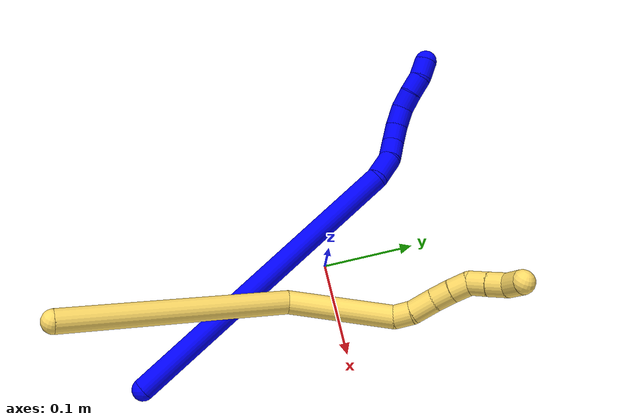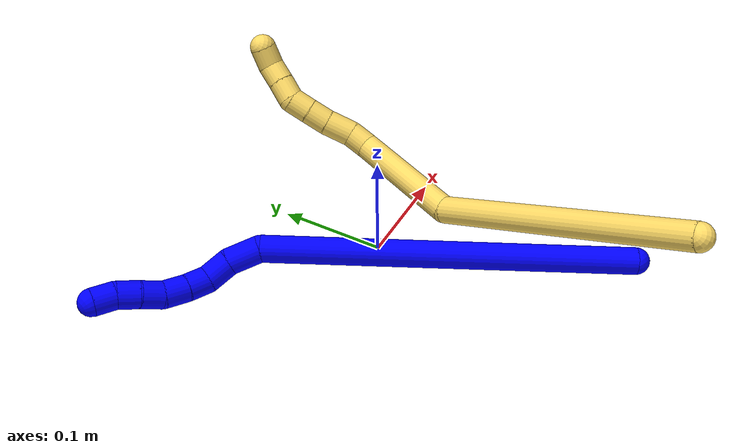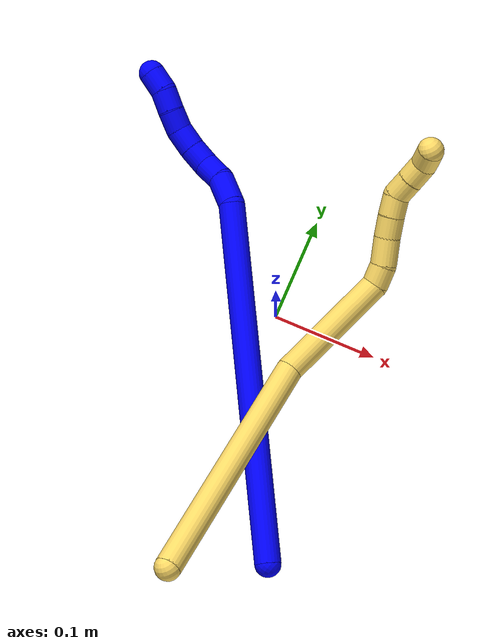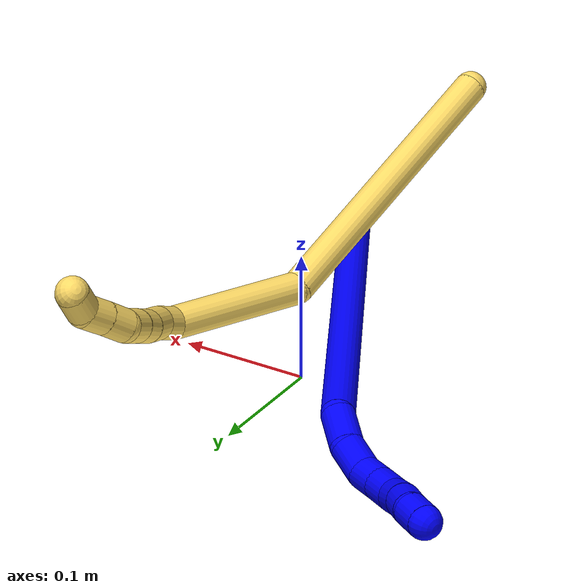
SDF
<sdf version="1.7">
 <world name="default">
  <model name="1">
   <static>0</static>
   <link name="1">
    <collision name="collision-cylinder-e_1_1_4">
     <pose>-0.072276 0.093438 -0.12329 -2.49308 -0.437072 1.16775</pose>
     <geometry><cylinder><radius>0.0125</radius><length>0.341495</length></cylinder></geometry>
     <surface>
      <friction><ode><mu>1.16</mu><mu2>1.16</mu2><slip1>0</slip1><slip2>0</slip2></ode></friction>
      <contact><ode><kp>1e+06</kp><kd>1</kd><max_vel>0</max_vel><min_depth>0.001</min_depth></ode></contact>
     </surface>
    </collision>
    <visual name="visual-cylinder-e_1_1_4">
     <pose>-0.072276 0.093438 -0.12329 -2.49308 -0.437072 1.16775</pose>
     <geometry><cylinder><radius>0.0125</radius><length>0.341495</length></cylinder></geometry>
     <material><ambient>0 0 1 1</ambient></material>
    </visual>
    <collision name="collision-cylinder-e_2_4_5">
     <pose>-0.144747 0.194857 -0.259523 -2.58898 -0.012894 0.045464</pose>
     <geometry><cylinder><radius>0.0125</radius><length>0.030415</length></cylinder></geometry>
     <surface>
      <friction><ode><mu>1.16</mu><mu2>1.16</mu2><slip1>0</slip1><slip2>0</slip2></ode></friction>
      <contact><ode><kp>1e+06</kp><kd>1</kd><max_vel>0</max_vel><min_depth>0.001</min_depth></ode></contact>
     </surface>
    </collision>
    <visual name="visual-cylinder-e_2_4_5">
     <pose>-0.144747 0.194857 -0.259523 -2.58898 -0.012894 0.045464</pose>
     <geometry><cylinder><radius>0.0125</radius><length>0.030415</length></cylinder></geometry>
     <material><ambient>0 0 1 1</ambient></material>
    </visual>
    <collision name="collision-cylinder-e_3_5_6">
     <pose>-0.142212 0.206642 -0.283809 -2.81814 0.224417 -1.20886</pose>
     <geometry><cylinder><radius>0.0125</radius><length>0.024543</length></cylinder></geometry>
     <surface>
      <friction><ode><mu>1.16</mu><mu2>1.16</mu2><slip1>0</slip1><slip2>0</slip2></ode></friction>
      <contact><ode><kp>1e+06</kp><kd>1</kd><max_vel>0</max_vel><min_depth>0.001</min_depth></ode></contact>
     </surface>
    </collision>
    <visual name="visual-cylinder-e_3_5_6">
     <pose>-0.142212 0.206642 -0.283809 -2.81814 0.224417 -1.20886</pose>
     <geometry><cylinder><radius>0.0125</radius><length>0.024543</length></cylinder></geometry>
     <material><ambient>0 0 1 1</ambient></material>
    </visual>
    <collision name="collision-cylinder-e_4_6_7">
     <pose>-0.141087 0.211397 -0.305337 -3.0483 -0.155736 2.06333</pose>
     <geometry><cylinder><radius>0.0125</radius><length>0.020708</length></cylinder></geometry>
     <surface>
      <friction><ode><mu>1.16</mu><mu2>1.16</mu2><slip1>0</slip1><slip2>0</slip2></ode></friction>
      <contact><ode><kp>1e+06</kp><kd>1</kd><max_vel>0</max_vel><min_depth>0.001</min_depth></ode></contact>
     </surface>
    </collision>
    <visual name="visual-cylinder-e_4_6_7">
     <pose>-0.141087 0.211397 -0.305337 -3.0483 -0.155736 2.06333</pose>
     <geometry><cylinder><radius>0.0125</radius><length>0.020708</length></cylinder></geometry>
     <material><ambient>0 0 1 1</ambient></material>
    </visual>
    <collision name="collision-cylinder-e_5_7_8">
     <pose>-0.145472 0.213757 -0.326001 -3.00815 -0.256975 2.187</pose>
     <geometry><cylinder><radius>0.0125</radius><length>0.021867</length></cylinder></geometry>
     <surface>
      <friction><ode><mu>1.16</mu><mu2>1.16</mu2><slip1>0</slip1><slip2>0</slip2></ode></friction>
      <contact><ode><kp>1e+06</kp><kd>1</kd><max_vel>0</max_vel><min_depth>0.001</min_depth></ode></contact>
     </surface>
    </collision>
    <visual name="visual-cylinder-e_5_7_8">
     <pose>-0.145472 0.213757 -0.326001 -3.00815 -0.256975 2.187</pose>
     <geometry><cylinder><radius>0.0125</radius><length>0.021867</length></cylinder></geometry>
     <material><ambient>0 0 1 1</ambient></material>
    </visual>
    <collision name="collision-cylinder-e_6_8_9">
     <pose>-0.153625 0.21658 -0.344872 -2.97439 -0.563301 2.5778</pose>
     <geometry><cylinder><radius>0.0125</radius><length>0.020128</length></cylinder></geometry>
     <surface>
      <friction><ode><mu>1.16</mu><mu2>1.16</mu2><slip1>0</slip1><slip2>0</slip2></ode></friction>
      <contact><ode><kp>1e+06</kp><kd>1</kd><max_vel>0</max_vel><min_depth>0.001</min_depth></ode></contact>
     </surface>
    </collision>
    <visual name="visual-cylinder-e_6_8_9">
     <pose>-0.153625 0.21658 -0.344872 -2.97439 -0.563301 2.5778</pose>
     <geometry><cylinder><radius>0.0125</radius><length>0.020128</length></cylinder></geometry>
     <material><ambient>0 0 1 1</ambient></material>
    </visual>
    <collision name="collision-cylinder-e_7_9_10">
     <pose>-0.16379 0.220578 -0.361925 -2.85185 -0.487438 2.08042</pose>
     <geometry><cylinder><radius>0.0125</radius><length>0.020461</length></cylinder></geometry>
     <surface>
      <friction><ode><mu>1.16</mu><mu2>1.16</mu2><slip1>0</slip1><slip2>0</slip2></ode></friction>
      <contact><ode><kp>1e+06</kp><kd>1</kd><max_vel>0</max_vel><min_depth>0.001</min_depth></ode></contact>
     </surface>
    </collision>
    <visual name="visual-cylinder-e_7_9_10">
     <pose>-0.16379 0.220578 -0.361925 -2.85185 -0.487438 2.08042</pose>
     <geometry><cylinder><radius>0.0125</radius><length>0.020461</length></cylinder></geometry>
     <material><ambient>0 0 1 1</ambient></material>
    </visual>
    <collision name="collision-cylinder-e_8_10_2">
     <pose>-0.170946 0.224917 -0.380343 -2.96351 -0.234151 1.84305</pose>
     <geometry><cylinder><radius>0.0125</radius><length>0.020383</length></cylinder></geometry>
     <surface>
      <friction><ode><mu>1.16</mu><mu2>1.16</mu2><slip1>0</slip1><slip2>0</slip2></ode></friction>
      <contact><ode><kp>1e+06</kp><kd>1</kd><max_vel>0</max_vel><min_depth>0.001</min_depth></ode></contact>
     </surface>
    </collision>
    <visual name="visual-cylinder-e_8_10_2">
     <pose>-0.170946 0.224917 -0.380343 -2.96351 -0.234151 1.84305</pose>
     <geometry><cylinder><radius>0.0125</radius><length>0.020383</length></cylinder></geometry>
     <material><ambient>0 0 1 1</ambient></material>
    </visual>
    <collision name="collision-sphere-2">
     <pose>-0.173311 0.226673 -0.3901 0 -0 0</pose>
     <geometry><sphere><radius>0.0125</radius></sphere></geometry>
     <surface>
      <friction><ode><mu>1.16</mu><mu2>1.16</mu2><slip1>0</slip1><slip2>0</slip2></ode></friction>
      <contact><ode><kp>1e+06</kp><kd>1</kd><max_vel>0</max_vel><min_depth>0.001</min_depth></ode></contact>
     </surface>
    </collision>
    <visual name="visual-sphere-2">
     <pose>-0.173311 0.226673 -0.3901 0 -0 0</pose>
     <geometry><sphere><radius>0.0125</radius></sphere></geometry>
     <material><ambient>0 0 1 1</ambient></material>
    </visual>
    <collision name="collision-sphere-10">
     <pose>-0.168582 0.223161 -0.370587 0 -0 0</pose>
     <geometry><sphere><radius>0.0125</radius></sphere></geometry>
     <surface>
      <friction><ode><mu>1.16</mu><mu2>1.16</mu2><slip1>0</slip1><slip2>0</slip2></ode></friction>
      <contact><ode><kp>1e+06</kp><kd>1</kd><max_vel>0</max_vel><min_depth>0.001</min_depth></ode></contact>
     </surface>
    </collision>
    <visual name="visual-sphere-10">
     <pose>-0.168582 0.223161 -0.370587 0 -0 0</pose>
     <geometry><sphere><radius>0.0125</radius></sphere></geometry>
     <material><ambient>0 0 1 1</ambient></material>
    </visual>
    <collision name="collision-sphere-9">
     <pose>-0.158999 0.217996 -0.353262 0 -0 0</pose>
     <geometry><sphere><radius>0.0125</radius></sphere></geometry>
     <surface>
      <friction><ode><mu>1.16</mu><mu2>1.16</mu2><slip1>0</slip1><slip2>0</slip2></ode></friction>
      <contact><ode><kp>1e+06</kp><kd>1</kd><max_vel>0</max_vel><min_depth>0.001</min_depth></ode></contact>
     </surface>
    </collision>
    <visual name="visual-sphere-9">
     <pose>-0.158999 0.217996 -0.353262 0 -0 0</pose>
     <geometry><sphere><radius>0.0125</radius></sphere></geometry>
     <material><ambient>0 0 1 1</ambient></material>
    </visual>
    <collision name="collision-sphere-4">
     <pose>-0.144551 0.186875 -0.24658 0 -0 0</pose>
     <geometry><sphere><radius>0.0125</radius></sphere></geometry>
     <surface>
      <friction><ode><mu>1.16</mu><mu2>1.16</mu2><slip1>0</slip1><slip2>0</slip2></ode></friction>
      <contact><ode><kp>1e+06</kp><kd>1</kd><max_vel>0</max_vel><min_depth>0.001</min_depth></ode></contact>
     </surface>
    </collision>
    <visual name="visual-sphere-4">
     <pose>-0.144551 0.186875 -0.24658 0 -0 0</pose>
     <geometry><sphere><radius>0.0125</radius></sphere></geometry>
     <material><ambient>0 0 1 1</ambient></material>
    </visual>
    <collision name="collision-sphere-1">
     <geometry><sphere><radius>0.0125</radius></sphere></geometry>
     <surface>
      <friction><ode><mu>1.16</mu><mu2>1.16</mu2><slip1>0</slip1><slip2>0</slip2></ode></friction>
      <contact><ode><kp>1e+06</kp><kd>1</kd><max_vel>0</max_vel><min_depth>0.001</min_depth></ode></contact>
     </surface>
    </collision>
    <visual name="visual-sphere-1">
     <geometry><sphere><radius>0.0125</radius></sphere></geometry>
     <material><ambient>0 0 1 1</ambient></material>
    </visual>
    <collision name="collision-sphere-8">
     <pose>-0.148251 0.215164 -0.336482 0 -0 0</pose>
     <geometry><sphere><radius>0.0125</radius></sphere></geometry>
     <surface>
      <friction><ode><mu>1.16</mu><mu2>1.16</mu2><slip1>0</slip1><slip2>0</slip2></ode></friction>
      <contact><ode><kp>1e+06</kp><kd>1</kd><max_vel>0</max_vel><min_depth>0.001</min_depth></ode></contact>
     </surface>
    </collision>
    <visual name="visual-sphere-8">
     <pose>-0.148251 0.215164 -0.336482 0 -0 0</pose>
     <geometry><sphere><radius>0.0125</radius></sphere></geometry>
     <material><ambient>0 0 1 1</ambient></material>
    </visual>
    <collision name="collision-sphere-5">
     <pose>-0.144943 0.202839 -0.272466 0 -0 0</pose>
     <geometry><sphere><radius>0.0125</radius></sphere></geometry>
     <surface>
      <friction><ode><mu>1.16</mu><mu2>1.16</mu2><slip1>0</slip1><slip2>0</slip2></ode></friction>
      <contact><ode><kp>1e+06</kp><kd>1</kd><max_vel>0</max_vel><min_depth>0.001</min_depth></ode></contact>
     </surface>
    </collision>
    <visual name="visual-sphere-5">
     <pose>-0.144943 0.202839 -0.272466 0 -0 0</pose>
     <geometry><sphere><radius>0.0125</radius></sphere></geometry>
     <material><ambient>0 0 1 1</ambient></material>
    </visual>
    <collision name="collision-sphere-6">
     <pose>-0.139481 0.210444 -0.295153 0 -0 0</pose>
     <geometry><sphere><radius>0.0125</radius></sphere></geometry>
     <surface>
      <friction><ode><mu>1.16</mu><mu2>1.16</mu2><slip1>0</slip1><slip2>0</slip2></ode></friction>
      <contact><ode><kp>1e+06</kp><kd>1</kd><max_vel>0</max_vel><min_depth>0.001</min_depth></ode></contact>
     </surface>
    </collision>
    <visual name="visual-sphere-6">
     <pose>-0.139481 0.210444 -0.295153 0 -0 0</pose>
     <geometry><sphere><radius>0.0125</radius></sphere></geometry>
     <material><ambient>0 0 1 1</ambient></material>
    </visual>
    <collision name="collision-sphere-7">
     <pose>-0.142693 0.21235 -0.315521 0 -0 0</pose>
     <geometry><sphere><radius>0.0125</radius></sphere></geometry>
     <surface>
      <friction><ode><mu>1.16</mu><mu2>1.16</mu2><slip1>0</slip1><slip2>0</slip2></ode></friction>
      <contact><ode><kp>1e+06</kp><kd>1</kd><max_vel>0</max_vel><min_depth>0.001</min_depth></ode></contact>
     </surface>
    </collision>
    <visual name="visual-sphere-7">
     <pose>-0.142693 0.21235 -0.315521 0 -0 0</pose>
     <geometry><sphere><radius>0.0125</radius></sphere></geometry>
     <material><ambient>0 0 1 1</ambient></material>
    </visual>
    <inertial>
     <pose>-0.09721 0.130831 -0.185026 0 -0 0</pose>
     <mass>0.5</mass>
     <inertia>
      <ixx>0.003952</ixx>
      <ixy>0</ixy>
      <ixz>0</ixz>
      <iyy>0.002542</iyy>
      <iyz>0</iyz>
      <izz>-0.000445</izz>
     </inertia>
    </inertial>
   </link>
   <pose>0.085963 -0.221271 0.011486 -1.49456 1.03007 -1.81535</pose>
  </model>
  <model name="5">
   <static>0</static>
   <link name="5">
    <collision name="collision-cylinder-e_1_1_4">
     <pose>0.035145 0.113609 -0.015711 -1.70822 0.297353 -0.340512</pose>
     <geometry><cylinder><radius>0.0125</radius><length>0.239908</length></cylinder></geometry>
     <surface>
      <friction><ode><mu>1.16</mu><mu2>1.16</mu2><slip1>0</slip1><slip2>0</slip2></ode></friction>
      <contact><ode><kp>1e+06</kp><kd>1</kd><max_vel>0</max_vel><min_depth>0.001</min_depth></ode></contact>
     </surface>
    </collision>
    <visual name="visual-cylinder-e_1_1_4">
     <pose>0.035145 0.113609 -0.015711 -1.70822 0.297353 -0.340512</pose>
     <geometry><cylinder><radius>0.0125</radius><length>0.239908</length></cylinder></geometry>
     <material><ambient>1 0.858824 0.4 1</ambient></material>
    </visual>
    <collision name="collision-cylinder-e_2_4_5">
     <pose>0.059499 0.281116 -0.043828 -1.79703 -0.192686 0.241644</pose>
     <geometry><cylinder><radius>0.0125</radius><length>0.112703</length></cylinder></geometry>
     <surface>
      <friction><ode><mu>1.16</mu><mu2>1.16</mu2><slip1>0</slip1><slip2>0</slip2></ode></friction>
      <contact><ode><kp>1e+06</kp><kd>1</kd><max_vel>0</max_vel><min_depth>0.001</min_depth></ode></contact>
     </surface>
    </collision>
    <visual name="visual-cylinder-e_2_4_5">
     <pose>0.059499 0.281116 -0.043828 -1.79703 -0.192686 0.241644</pose>
     <geometry><cylinder><radius>0.0125</radius><length>0.112703</length></cylinder></geometry>
     <material><ambient>1 0.858824 0.4 1</ambient></material>
    </visual>
    <collision name="collision-cylinder-e_3_5_6">
     <pose>0.046534 0.342299 -0.062963 -2.31664 -0.215817 0.485369</pose>
     <geometry><cylinder><radius>0.0125</radius><length>0.020303</length></cylinder></geometry>
     <surface>
      <friction><ode><mu>1.16</mu><mu2>1.16</mu2><slip1>0</slip1><slip2>0</slip2></ode></friction>
      <contact><ode><kp>1e+06</kp><kd>1</kd><max_vel>0</max_vel><min_depth>0.001</min_depth></ode></contact>
     </surface>
    </collision>
    <visual name="visual-cylinder-e_3_5_6">
     <pose>0.046534 0.342299 -0.062963 -2.31664 -0.215817 0.485369</pose>
     <geometry><cylinder><radius>0.0125</radius><length>0.020303</length></cylinder></geometry>
     <material><ambient>1 0.858824 0.4 1</ambient></material>
    </visual>
    <collision name="collision-cylinder-e_4_6_7">
     <pose>0.0443 0.357643 -0.080144 -2.48467 -0.004597 0.013487</pose>
     <geometry><cylinder><radius>0.0125</radius><length>0.026399</length></cylinder></geometry>
     <surface>
      <friction><ode><mu>1.16</mu><mu2>1.16</mu2><slip1>0</slip1><slip2>0</slip2></ode></friction>
      <contact><ode><kp>1e+06</kp><kd>1</kd><max_vel>0</max_vel><min_depth>0.001</min_depth></ode></contact>
     </surface>
    </collision>
    <visual name="visual-cylinder-e_4_6_7">
     <pose>0.0443 0.357643 -0.080144 -2.48467 -0.004597 0.013487</pose>
     <geometry><cylinder><radius>0.0125</radius><length>0.026399</length></cylinder></geometry>
     <material><ambient>1 0.858824 0.4 1</ambient></material>
    </visual>
    <collision name="collision-cylinder-e_5_7_8">
     <pose>0.043008 0.371762 -0.098851 -2.50846 -0.119623 0.36161</pose>
     <geometry><cylinder><radius>0.0125</radius><length>0.020626</length></cylinder></geometry>
     <surface>
      <friction><ode><mu>1.16</mu><mu2>1.16</mu2><slip1>0</slip1><slip2>0</slip2></ode></friction>
      <contact><ode><kp>1e+06</kp><kd>1</kd><max_vel>0</max_vel><min_depth>0.001</min_depth></ode></contact>
     </surface>
    </collision>
    <visual name="visual-cylinder-e_5_7_8">
     <pose>0.043008 0.371762 -0.098851 -2.50846 -0.119623 0.36161</pose>
     <geometry><cylinder><radius>0.0125</radius><length>0.020626</length></cylinder></geometry>
     <material><ambient>1 0.858824 0.4 1</ambient></material>
    </visual>
    <collision name="collision-cylinder-e_6_8_9">
     <pose>0.040479 0.384126 -0.114787 -2.45421 -0.12998 0.359761</pose>
     <geometry><cylinder><radius>0.0125</radius><length>0.020044</length></cylinder></geometry>
     <surface>
      <friction><ode><mu>1.16</mu><mu2>1.16</mu2><slip1>0</slip1><slip2>0</slip2></ode></friction>
      <contact><ode><kp>1e+06</kp><kd>1</kd><max_vel>0</max_vel><min_depth>0.001</min_depth></ode></contact>
     </surface>
    </collision>
    <visual name="visual-cylinder-e_6_8_9">
     <pose>0.040479 0.384126 -0.114787 -2.45421 -0.12998 0.359761</pose>
     <geometry><cylinder><radius>0.0125</radius><length>0.020044</length></cylinder></geometry>
     <material><ambient>1 0.858824 0.4 1</ambient></material>
    </visual>
    <collision name="collision-cylinder-e_7_9_10">
     <pose>0.033622 0.397128 -0.127404 -2.20607 -0.588897 1.08134</pose>
     <geometry><cylinder><radius>0.0125</radius><length>0.020011</length></cylinder></geometry>
     <surface>
      <friction><ode><mu>1.16</mu><mu2>1.16</mu2><slip1>0</slip1><slip2>0</slip2></ode></friction>
      <contact><ode><kp>1e+06</kp><kd>1</kd><max_vel>0</max_vel><min_depth>0.001</min_depth></ode></contact>
     </surface>
    </collision>
    <visual name="visual-cylinder-e_7_9_10">
     <pose>0.033622 0.397128 -0.127404 -2.20607 -0.588897 1.08134</pose>
     <geometry><cylinder><radius>0.0125</radius><length>0.020011</length></cylinder></geometry>
     <material><ambient>1 0.858824 0.4 1</ambient></material>
    </visual>
    <collision name="collision-cylinder-e_8_10_11">
     <pose>0.022796 0.41073 -0.137301 -2.19368 -0.554831 1.01356</pose>
     <geometry><cylinder><radius>0.0125</radius><length>0.020003</length></cylinder></geometry>
     <surface>
      <friction><ode><mu>1.16</mu><mu2>1.16</mu2><slip1>0</slip1><slip2>0</slip2></ode></friction>
      <contact><ode><kp>1e+06</kp><kd>1</kd><max_vel>0</max_vel><min_depth>0.001</min_depth></ode></contact>
     </surface>
    </collision>
    <visual name="visual-cylinder-e_8_10_11">
     <pose>0.022796 0.41073 -0.137301 -2.19368 -0.554831 1.01356</pose>
     <geometry><cylinder><radius>0.0125</radius><length>0.020003</length></cylinder></geometry>
     <material><ambient>1 0.858824 0.4 1</ambient></material>
    </visual>
    <collision name="collision-cylinder-e_9_11_2">
     <pose>0.011033 0.420111 -0.149452 -2.80997 -0.706687 2.28967</pose>
     <geometry><cylinder><radius>0.0125</radius><length>0.020004</length></cylinder></geometry>
     <surface>
      <friction><ode><mu>1.16</mu><mu2>1.16</mu2><slip1>0</slip1><slip2>0</slip2></ode></friction>
      <contact><ode><kp>1e+06</kp><kd>1</kd><max_vel>0</max_vel><min_depth>0.001</min_depth></ode></contact>
     </surface>
    </collision>
    <visual name="visual-cylinder-e_9_11_2">
     <pose>0.011033 0.420111 -0.149452 -2.80997 -0.706687 2.28967</pose>
     <geometry><cylinder><radius>0.0125</radius><length>0.020004</length></cylinder></geometry>
     <material><ambient>1 0.858824 0.4 1</ambient></material>
    </visual>
    <collision name="collision-sphere-2">
     <pose>0.004539 0.422587 -0.156645 0 -0 0</pose>
     <geometry><sphere><radius>0.0125</radius></sphere></geometry>
     <surface>
      <friction><ode><mu>1.16</mu><mu2>1.16</mu2><slip1>0</slip1><slip2>0</slip2></ode></friction>
      <contact><ode><kp>1e+06</kp><kd>1</kd><max_vel>0</max_vel><min_depth>0.001</min_depth></ode></contact>
     </surface>
    </collision>
    <visual name="visual-sphere-2">
     <pose>0.004539 0.422587 -0.156645 0 -0 0</pose>
     <geometry><sphere><radius>0.0125</radius></sphere></geometry>
     <material><ambient>1 0.858824 0.4 1</ambient></material>
    </visual>
    <collision name="collision-sphere-11">
     <pose>0.017527 0.417634 -0.14226 0 -0 0</pose>
     <geometry><sphere><radius>0.0125</radius></sphere></geometry>
     <surface>
      <friction><ode><mu>1.16</mu><mu2>1.16</mu2><slip1>0</slip1><slip2>0</slip2></ode></friction>
      <contact><ode><kp>1e+06</kp><kd>1</kd><max_vel>0</max_vel><min_depth>0.001</min_depth></ode></contact>
     </surface>
    </collision>
    <visual name="visual-sphere-11">
     <pose>0.017527 0.417634 -0.14226 0 -0 0</pose>
     <geometry><sphere><radius>0.0125</radius></sphere></geometry>
     <material><ambient>1 0.858824 0.4 1</ambient></material>
    </visual>
    <collision name="collision-sphere-10">
     <pose>0.028065 0.403825 -0.132342 0 -0 0</pose>
     <geometry><sphere><radius>0.0125</radius></sphere></geometry>
     <surface>
      <friction><ode><mu>1.16</mu><mu2>1.16</mu2><slip1>0</slip1><slip2>0</slip2></ode></friction>
      <contact><ode><kp>1e+06</kp><kd>1</kd><max_vel>0</max_vel><min_depth>0.001</min_depth></ode></contact>
     </surface>
    </collision>
    <visual name="visual-sphere-10">
     <pose>0.028065 0.403825 -0.132342 0 -0 0</pose>
     <geometry><sphere><radius>0.0125</radius></sphere></geometry>
     <material><ambient>1 0.858824 0.4 1</ambient></material>
    </visual>
    <collision name="collision-sphere-9">
     <pose>0.03918 0.390431 -0.122467 0 -0 0</pose>
     <geometry><sphere><radius>0.0125</radius></sphere></geometry>
     <surface>
      <friction><ode><mu>1.16</mu><mu2>1.16</mu2><slip1>0</slip1><slip2>0</slip2></ode></friction>
      <contact><ode><kp>1e+06</kp><kd>1</kd><max_vel>0</max_vel><min_depth>0.001</min_depth></ode></contact>
     </surface>
    </collision>
    <visual name="visual-sphere-9">
     <pose>0.03918 0.390431 -0.122467 0 -0 0</pose>
     <geometry><sphere><radius>0.0125</radius></sphere></geometry>
     <material><ambient>1 0.858824 0.4 1</ambient></material>
    </visual>
    <collision name="collision-sphere-4">
     <pose>0.070291 0.227217 -0.031422 0 -0 0</pose>
     <geometry><sphere><radius>0.0125</radius></sphere></geometry>
     <surface>
      <friction><ode><mu>1.16</mu><mu2>1.16</mu2><slip1>0</slip1><slip2>0</slip2></ode></friction>
      <contact><ode><kp>1e+06</kp><kd>1</kd><max_vel>0</max_vel><min_depth>0.001</min_depth></ode></contact>
     </surface>
    </collision>
    <visual name="visual-sphere-4">
     <pose>0.070291 0.227217 -0.031422 0 -0 0</pose>
     <geometry><sphere><radius>0.0125</radius></sphere></geometry>
     <material><ambient>1 0.858824 0.4 1</ambient></material>
    </visual>
    <collision name="collision-sphere-1">
     <geometry><sphere><radius>0.0125</radius></sphere></geometry>
     <surface>
      <friction><ode><mu>1.16</mu><mu2>1.16</mu2><slip1>0</slip1><slip2>0</slip2></ode></friction>
      <contact><ode><kp>1e+06</kp><kd>1</kd><max_vel>0</max_vel><min_depth>0.001</min_depth></ode></contact>
     </surface>
    </collision>
    <visual name="visual-sphere-1">
     <geometry><sphere><radius>0.0125</radius></sphere></geometry>
     <material><ambient>1 0.858824 0.4 1</ambient></material>
    </visual>
    <collision name="collision-sphere-8">
     <pose>0.041778 0.37782 -0.107106 0 -0 0</pose>
     <geometry><sphere><radius>0.0125</radius></sphere></geometry>
     <surface>
      <friction><ode><mu>1.16</mu><mu2>1.16</mu2><slip1>0</slip1><slip2>0</slip2></ode></friction>
      <contact><ode><kp>1e+06</kp><kd>1</kd><max_vel>0</max_vel><min_depth>0.001</min_depth></ode></contact>
     </surface>
    </collision>
    <visual name="visual-sphere-8">
     <pose>0.041778 0.37782 -0.107106 0 -0 0</pose>
     <geometry><sphere><radius>0.0125</radius></sphere></geometry>
     <material><ambient>1 0.858824 0.4 1</ambient></material>
    </visual>
    <collision name="collision-sphere-5">
     <pose>0.048708 0.335015 -0.056234 0 -0 0</pose>
     <geometry><sphere><radius>0.0125</radius></sphere></geometry>
     <surface>
      <friction><ode><mu>1.16</mu><mu2>1.16</mu2><slip1>0</slip1><slip2>0</slip2></ode></friction>
      <contact><ode><kp>1e+06</kp><kd>1</kd><max_vel>0</max_vel><min_depth>0.001</min_depth></ode></contact>
     </surface>
    </collision>
    <visual name="visual-sphere-5">
     <pose>0.048708 0.335015 -0.056234 0 -0 0</pose>
     <geometry><sphere><radius>0.0125</radius></sphere></geometry>
     <material><ambient>1 0.858824 0.4 1</ambient></material>
    </visual>
    <collision name="collision-sphere-6">
     <pose>0.044361 0.349583 -0.069692 0 -0 0</pose>
     <geometry><sphere><radius>0.0125</radius></sphere></geometry>
     <surface>
      <friction><ode><mu>1.16</mu><mu2>1.16</mu2><slip1>0</slip1><slip2>0</slip2></ode></friction>
      <contact><ode><kp>1e+06</kp><kd>1</kd><max_vel>0</max_vel><min_depth>0.001</min_depth></ode></contact>
     </surface>
    </collision>
    <visual name="visual-sphere-6">
     <pose>0.044361 0.349583 -0.069692 0 -0 0</pose>
     <geometry><sphere><radius>0.0125</radius></sphere></geometry>
     <material><ambient>1 0.858824 0.4 1</ambient></material>
    </visual>
    <collision name="collision-sphere-7">
     <pose>0.044239 0.365704 -0.090596 0 -0 0</pose>
     <geometry><sphere><radius>0.0125</radius></sphere></geometry>
     <surface>
      <friction><ode><mu>1.16</mu><mu2>1.16</mu2><slip1>0</slip1><slip2>0</slip2></ode></friction>
      <contact><ode><kp>1e+06</kp><kd>1</kd><max_vel>0</max_vel><min_depth>0.001</min_depth></ode></contact>
     </surface>
    </collision>
    <visual name="visual-sphere-7">
     <pose>0.044239 0.365704 -0.090596 0 -0 0</pose>
     <geometry><sphere><radius>0.0125</radius></sphere></geometry>
     <material><ambient>1 0.858824 0.4 1</ambient></material>
    </visual>
    <inertial>
     <pose>0.040599 0.230526 -0.049456 0 -0 0</pose>
     <mass>0.5</mass>
     <inertia>
      <ixx>0.000834</ixx>
      <ixy>0</ixy>
      <ixz>0</ixz>
      <iyy>-0.000366</iyy>
      <iyz>0</iyz>
      <izz>-0.001549</izz>
     </inertia>
    </inertial>
   </link>
   <pose>0.012942 -0.274586 0.125868 -2.79423 0.801766 2.97806</pose>
  </model>
 </world>
</sdf>
